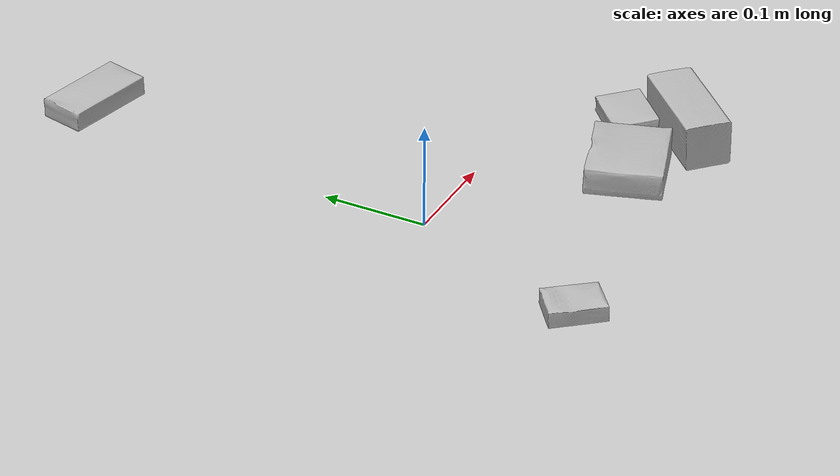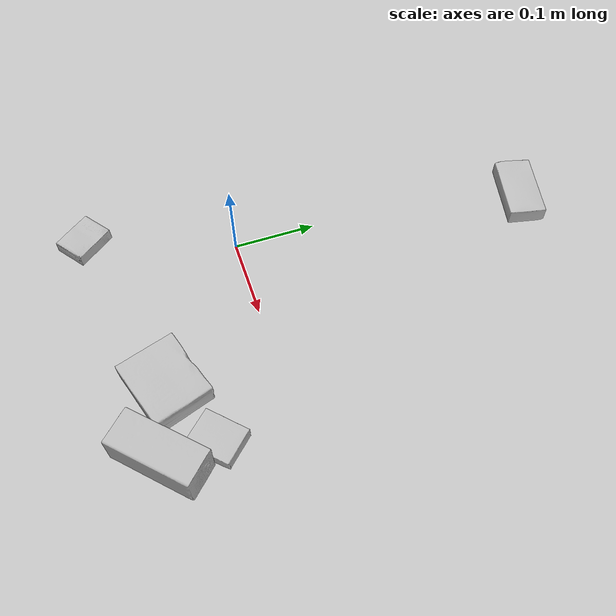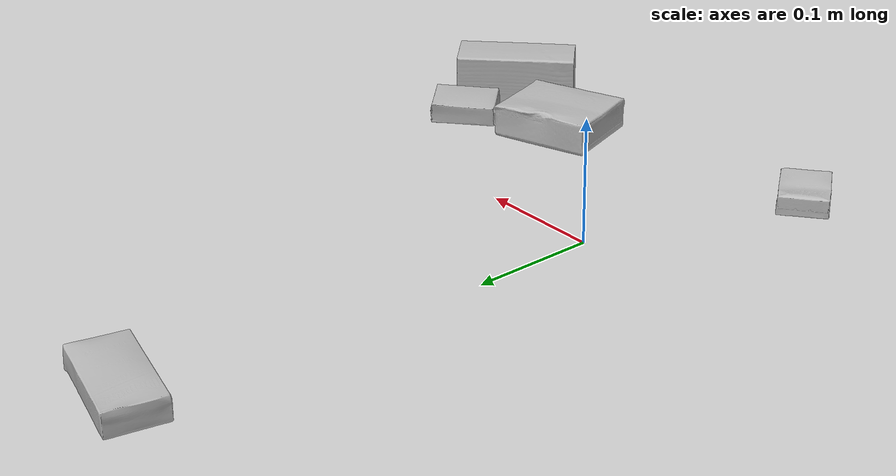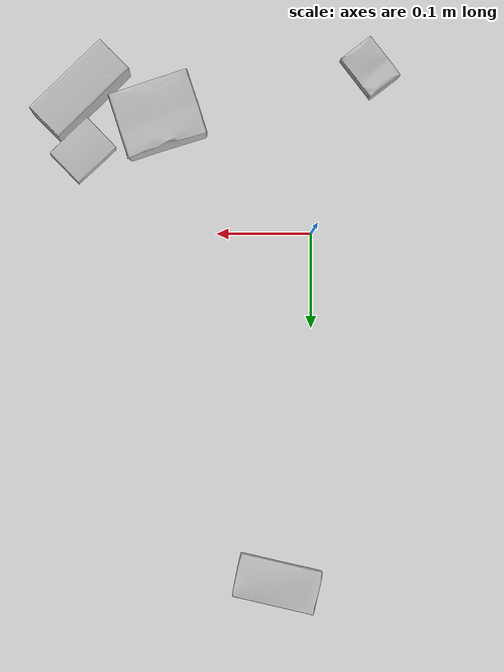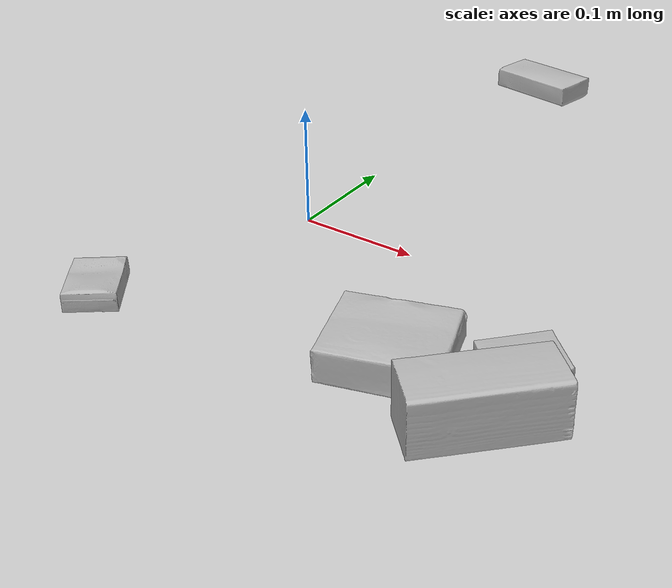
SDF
<sdf version="1.4">
  <world name="default">
    <light name="light1" type="point">
      <pose>0 0 1 0 0 0</pose>
      <diffuse>3 3 3 1</diffuse>
      <specular>3 3 3 1</specular>
    </light>
    <light name="light2" type="point">
      <pose>0 0.5 2 0 0 0</pose>
      <diffuse>1 1 1 1</diffuse>
      <specular>1 1 1 1</specular>
    </light>
    <light name="light3" type="point">
      <pose>0 0.5 2 0 0 0</pose>
      <diffuse>3 3 3 1</diffuse>
      <specular>3 3 3 1</specular>
    </light>
    <scene>
      <ambient>0.7 0.7 0.7</ambient>
    </scene>
    <model name="box1">
      <link name="link_box1">
        <collision name="default">
          <geometry>
            <mesh>
              <uri>model://gelatin_box/collision_meshes/collision.obj</uri>
              <scale>1.0 1.0 1.0</scale>
            </mesh>
          </geometry>
          <surface>
            <friction>
              <ode>
                <mu>0.5</mu>
                <mu2>0.5</mu2>
              </ode>
            </friction>
          <contact>
        <ode>
            <max_vel>0</max_vel>
            <min_depth>0.0001</min_depth>
            <kp>1e8</kp>
        </ode>
    </contact></surface>
        </collision>
        <visual name="default">
          <geometry>
            <mesh>
              <uri>model://gelatin_box/visual_meshes/visual.dae</uri>
              <scale>1.0 1.0 1.0</scale>
            </mesh>
          </geometry>
        </visual>
        <inertial>
          <mass>0.2001359760761261</mass>
          <pose>0.0004319618456065655 0.00011156872642459348 -0.00036403213744051754 -0.0010503718728910522 -0.00475581915504666 0.01644056319729456</pose>
          <inertia>
            <ixx>0.00014127967</ixx>
            <iyy>0.00010091532</iyy>
            <izz>0.00021505913</izz>
            <ixy>0</ixy>
            <ixz>0</ixz>
            <iyz>0</iyz>
          </inertia>
        </inertial>
      </link>
      <pose>0.16257338225841522 -0.12460537999868393 0.015168314799666405 0.005597176647756788 -0.0073042438353066695 1.8754078261400355</pose>
    </model>
    <model name="box2">
      <link name="link_box2">
        <collision name="default">
          <geometry>
            <mesh>
              <uri>model://cracker_box/collision_meshes/collision.obj</uri>
              <scale>0.25 0.25 0.25</scale>
            </mesh>
          </geometry>
          <surface>
            <friction>
              <ode>
                <mu>0.5</mu>
                <mu2>0.5</mu2>
              </ode>
            </friction>
          <contact>
        <ode>
            <max_vel>0</max_vel>
            <min_depth>0.0001</min_depth>
            <kp>1e8</kp>
        </ode>
    </contact></surface>
        </collision>
        <visual name="default">
          <geometry>
            <mesh>
              <uri>model://cracker_box/visual_meshes/visual.dae</uri>
              <scale>0.25 0.25 0.25</scale>
            </mesh>
          </geometry>
        </visual>
        <inertial>
          <mass>0.052757441997528076</mass>
          <pose>0.00023660421720705926 6.358561950037256e-05 -0.0004257383698131889 -0.0003162076882876523 -0.011106491463043667 0.002546795002652857</pose>
          <inertia>
            <ixx>8.38696e-06</ixx>
            <iyy>1.384852e-05</iyy>
            <izz>1.9763109e-05</izz>
            <ixy>0</ixy>
            <ixz>0</ixz>
            <iyz>0</iyz>
          </inertia>
        </inertial>
      </link>
      <pose>-0.0630410760641098 -0.17648595571517944 0.009120449423789978 -0.011788282029512223 -0.0073672754198198425 -0.917533258027263</pose>
    </model>
    <model name="box3">
      <link name="link_box3">
        <collision name="default">
          <geometry>
            <mesh>
              <uri>model://wood_block/collision_meshes/collision.obj</uri>
              <scale>0.5 0.5 0.5</scale>
            </mesh>
          </geometry>
          <surface>
            <friction>
              <ode>
                <mu>0.5</mu>
                <mu2>0.5</mu2>
              </ode>
            </friction>
          <contact>
        <ode>
            <max_vel>0</max_vel>
            <min_depth>0.0001</min_depth>
            <kp>1e8</kp>
        </ode>
    </contact></surface>
        </collision>
        <visual name="default">
          <geometry>
            <mesh>
              <uri>model://wood_block/visual_meshes/visual.dae</uri>
              <scale>0.5 0.5 0.5</scale>
            </mesh>
          </geometry>
        </visual>
        <inertial>
          <mass>0.15567830204963684</mass>
          <pose>-2.9066577553749084e-06 -0.000285404734313488 0.00013204292918089777 -0.052210429644919926 -0.005192696852900695 -0.006861378081336091</pose>
          <inertia>
            <ixx>5.2080282e-05</ixx>
            <iyy>0.00016452163</iyy>
            <izz>0.00016390622</izz>
            <ixy>0</ixy>
            <ixz>0</ixz>
            <iyz>0</iyz>
          </inertia>
        </inertial>
      </link>
      <pose>0.24338997900485992 -0.14793236553668976 0.022527482360601425 -0.015844825998970902 -0.00040173913779309705 0.7798284667562457</pose>
    </model>
    <model name="box4">
      <link name="link_box4">
        <collision name="default">
          <geometry>
            <mesh>
              <uri>model://pudding_box/collision_meshes/collision.obj</uri>
              <scale>0.5 0.5 0.5</scale>
            </mesh>
          </geometry>
          <surface>
            <friction>
              <ode>
                <mu>0.5</mu>
                <mu2>0.5</mu2>
              </ode>
            </friction>
          <contact>
        <ode>
            <max_vel>0</max_vel>
            <min_depth>0.0001</min_depth>
            <kp>1e8</kp>
        </ode>
    </contact></surface>
        </collision>
        <visual name="default">
          <geometry>
            <mesh>
              <uri>model://pudding_box/visual_meshes/visual.dae</uri>
              <scale>0.5 0.5 0.5</scale>
            </mesh>
          </geometry>
        </visual>
        <inertial>
          <mass>0.0498165600001812</mass>
          <pose>0.00024474109522998333 0.00040339428232982755 -0.0002594413817860186 0.00521310227074754 -0.006603796865596143 0.02007982702575369</pose>
          <inertia>
            <ixx>1.4078764e-05</ixx>
            <iyy>9.472293e-06</iyy>
            <izz>2.0790974e-05</izz>
            <ixy>0</ixy>
            <ixz>0</ixz>
            <iyz>0</iyz>
          </inertia>
        </inertial>
      </link>
      <pose>0.24146999418735504 -0.087350994348526 0.009862900711596012 0.022348648102319183 -0.011391620310194257 -0.8037936718936584</pose>
    </model>
    <model name="box5">
      <link name="link_box5">
        <collision name="default">
          <geometry>
            <mesh>
              <uri>model://sugar_box/collision_meshes/collision.obj</uri>
              <scale>0.5 0.5 0.5</scale>
            </mesh>
          </geometry>
          <surface>
            <friction>
              <ode>
                <mu>0.5</mu>
                <mu2>0.5</mu2>
              </ode>
            </friction>
          <contact>
        <ode>
            <max_vel>0</max_vel>
            <min_depth>0.0001</min_depth>
            <kp>1e8</kp>
        </ode>
    </contact></surface>
        </collision>
        <visual name="default">
          <geometry>
            <mesh>
              <uri>model://sugar_box/visual_meshes/visual.dae</uri>
              <scale>0.5 0.5 0.5</scale>
            </mesh>
          </geometry>
        </visual>
        <inertial>
          <mass>0.08508674055337906</mass>
          <pose>0.0005171863595023751 1.924554817378521e-05 -0.00018182402709499002 -0.0004046257768003499 0.0010506634050152445 0.002615378556389427</pose>
          <inertia>
            <ixx>1.7723507e-05</ixx>
            <iyy>5.7286023e-05</iyy>
            <izz>6.85782e-05</izz>
            <ixy>0</ixy>
            <ixz>0</ixz>
            <iyz>0</iyz>
          </inertia>
        </inertial>
      </link>
      <pose>0.03734902665019035 0.36810001730918884 0.011399309150874615 0.0007749825504371311 -0.0234331496992653 -0.23310919166930616</pose>
    </model>
  <physics type="ode">
      <max_contacts>50</max_contacts>
      <ode>
        <solver>
          <type>quick</type>
          <iters>75</iters>
        </solver>
        <constraints>
          <contact_max_correcting_vel>0</contact_max_correcting_vel>
          <contact_surface_layer>0</contact_surface_layer>
        </constraints>
      </ode>
    </physics></world>
</sdf>
